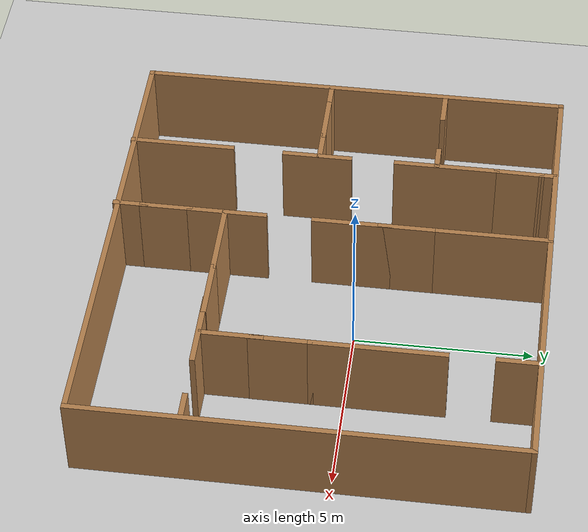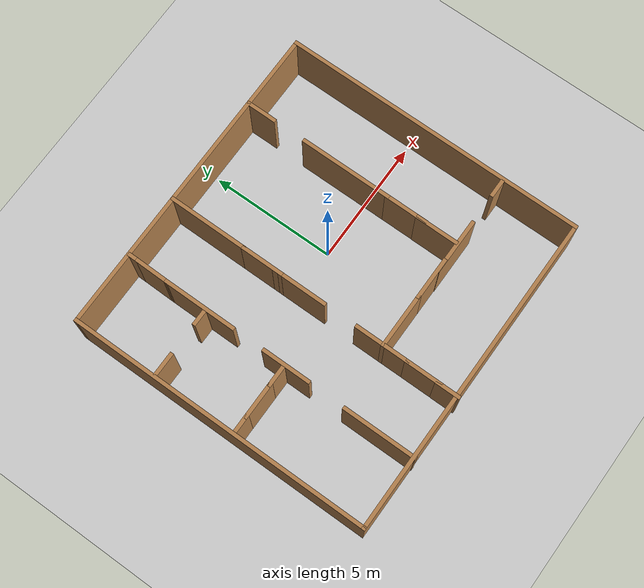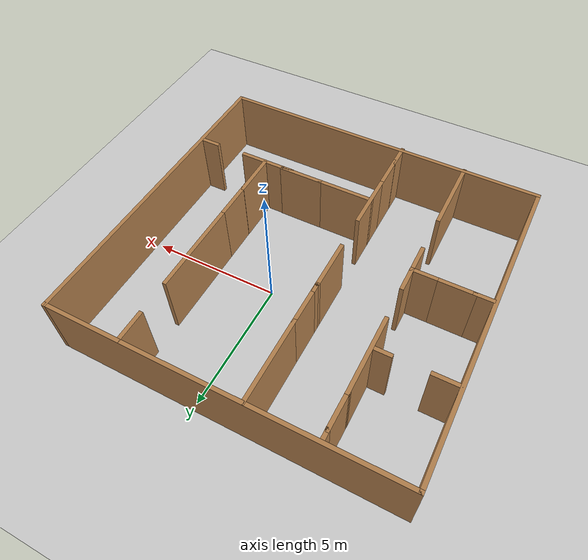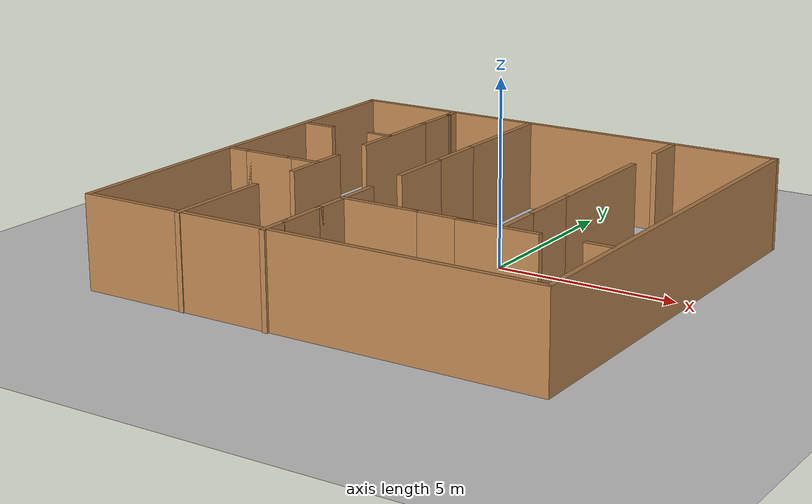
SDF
<sdf version="1.6">
 <world name="default">
  <light name="sun" type="directional">
   <pose>0 0 10 0 -0 0</pose>
   <diffuse>0.8 0.8 0.8 1</diffuse>
   <specular>0.2 0.2 0.2 1</specular>
   <attenuation>
    <range>1000</range>
    <constant>0.9</constant>
    <linear>0.01</linear>
    <quadratic>0.001</quadratic>
   </attenuation>
   <direction>-0.5 0.1 -0.9</direction>
  </light>
  <model name="ground_plane">
   <static>1</static>
   <link name="link">
    <collision name="collision">
     <geometry><plane><normal>0 0 1</normal><size>100 100</size></plane></geometry>
     <surface>
      <contact><collide_bitmask>65535</collide_bitmask></contact>
      <friction><ode><mu>100</mu><mu2>50</mu2></ode></friction>
     </surface>
    </collision>
    <visual name="visual">
     <cast_shadows>0</cast_shadows>
     <geometry><plane><normal>0 0 1</normal><size>100 100</size></plane></geometry>
     <material>
      <script><uri>file://media/materials/scripts/gazebo.material</uri><name>Gazebo/Grey</name></script>
     </material>
    </visual>
   </link>
  </model>
  <gravity>0 0 -9.8</gravity>
  <magnetic_field>6e-06 2.3e-05 -4.2e-05</magnetic_field>
  <atmosphere type="adiabatic"/>
  <physics name="default_physics" default="0" type="ode">
   <max_step_size>0.001</max_step_size>
   <real_time_factor>1</real_time_factor>
   <real_time_update_rate>1000</real_time_update_rate>
  </physics>
  <scene><ambient>0.4 0.4 0.4 1</ambient><background>0.7 0.7 0.7 1</background><shadows>1</shadows></scene>
  <audio><device>default</device></audio>
  <spherical_coordinates>
   <surface_model>EARTH_WGS84</surface_model>
   <latitude_deg>0</latitude_deg>
   <longitude_deg>0</longitude_deg>
   <elevation>0</elevation>
   <heading_deg>0</heading_deg>
  </spherical_coordinates>
  <model name="doors_sym">
   <pose>-1.1337 -0.884038 0 0 -0 0</pose>
   <link name="Wall_10">
    <collision name="Wall_10_Collision">
     <geometry><box><size>12.25 0.15 2.5</size></box></geometry>
     <pose>0 0 1.25 0 -0 0</pose>
    </collision>
    <visual name="Wall_10_Visual">
     <pose>0 0 1.25 0 -0 0</pose>
     <geometry><box><size>12.25 0.15 2.5</size></box></geometry>
     <material>
      <script><uri>file://media/materials/scripts/gazebo.material</uri><name>Gazebo/Wood</name></script>
      <ambient>1 1 1 1</ambient>
     </material>
     <meta><layer>0</layer></meta>
    </visual>
    <pose>6.425 0.033165 0 0 -0 1.5708</pose>
   </link>
   <link name="Wall_11">
    <collision name="Wall_11_Collision">
     <geometry><box><size>13 0.15 2.5</size></box></geometry>
     <pose>0 0 1.25 0 -0 0</pose>
    </collision>
    <visual name="Wall_11_Visual">
     <pose>0 0 1.25 0 -0 0</pose>
     <geometry><box><size>13 0.15 2.5</size></box></geometry>
     <material>
      <script><uri>file://media/materials/scripts/gazebo.material</uri><name>Gazebo/Wood</name></script>
      <ambient>1 1 1 1</ambient>
     </material>
     <meta><layer>0</layer></meta>
    </visual>
    <pose>0 6.08317 0 0 -0 3.14159</pose>
   </link>
   <link name="Wall_13">
    <collision name="Wall_13_Collision">
     <geometry><box><size>3 0.15 2.5</size></box></geometry>
     <pose>0 0 1.25 0 -0 0</pose>
    </collision>
    <visual name="Wall_13_Visual">
     <pose>0 0 1.25 0 -0 0</pose>
     <geometry><box><size>3 0.15 2.5</size></box></geometry>
     <material>
      <script><uri>file://media/materials/scripts/gazebo.material</uri><name>Gazebo/Wood</name></script>
      <ambient>1 1 1 1</ambient>
     </material>
     <meta><layer>0</layer></meta>
    </visual>
    <pose>-3.54148 -4.61932 0 0 -0 1.5708</pose>
   </link>
   <link name="Wall_15">
    <collision name="Wall_15_Collision">
     <geometry><box><size>2.25 0.15 2.5</size></box></geometry>
     <pose>0 0 1.25 0 -0 0</pose>
    </collision>
    <visual name="Wall_15_Visual">
     <pose>0 0 1.25 0 -0 0</pose>
     <geometry><box><size>2.25 0.15 2.5</size></box></geometry>
     <material>
      <script><uri>file://media/materials/scripts/gazebo.material</uri><name>Gazebo/Wood</name></script>
      <ambient>1 1 1 1</ambient>
     </material>
     <meta><layer>0</layer></meta>
    </visual>
    <pose>-0.979468 -2.93093 0 0 -0 1.5708</pose>
   </link>
   <link name="Wall_18">
    <collision name="Wall_18_Collision">
     <geometry><box><size>2.25 0.15 2.5</size></box></geometry>
     <pose>0 0 1.25 0 -0 0</pose>
    </collision>
    <visual name="Wall_18_Visual">
     <pose>0 0 1.25 0 -0 0</pose>
     <geometry><box><size>2.25 0.15 2.5</size></box></geometry>
     <material>
      <script><uri>file://media/materials/scripts/gazebo.material</uri><name>Gazebo/Wood</name></script>
      <ambient>1 1 1 1</ambient>
     </material>
     <meta><layer>0</layer></meta>
    </visual>
    <pose>3.38593 -3.00335 0 0 -0 0</pose>
   </link>
   <link name="Wall_20">
    <collision name="Wall_20_Collision">
     <geometry><box><size>3.75 0.15 2.5</size></box></geometry>
     <pose>0 0 1.25 0 -0 0</pose>
    </collision>
    <visual name="Wall_20_Visual">
     <pose>0 0 1.25 0 -0 0</pose>
     <geometry><box><size>3.75 0.15 2.5</size></box></geometry>
     <material>
      <script><uri>file://media/materials/scripts/gazebo.material</uri><name>Gazebo/Wood</name></script>
      <ambient>1 1 1 1</ambient>
     </material>
     <meta><layer>0</layer></meta>
    </visual>
    <pose>3.50313 1.78693 0 0 -0 1.5708</pose>
   </link>
   <link name="Wall_22">
    <collision name="Wall_22_Collision">
     <geometry><box><size>1.25 0.15 2.5</size></box></geometry>
     <pose>0 0 1.25 0 -0 0</pose>
    </collision>
    <visual name="Wall_22_Visual">
     <pose>0 0 1.25 0 -0 0</pose>
     <geometry><box><size>1.25 0.15 2.5</size></box></geometry>
     <material>
      <script><uri>file://media/materials/scripts/gazebo.material</uri><name>Gazebo/Wood</name></script>
      <ambient>1 1 1 1</ambient>
     </material>
     <meta><layer>0</layer></meta>
    </visual>
    <pose>3.49967 5.5086 0 0 -0 -1.5708</pose>
   </link>
   <link name="Wall_24">
    <collision name="Wall_24_Collision">
     <geometry><box><size>1.75 0.15 2.5</size></box></geometry>
     <pose>0 0 1.25 0 -0 0</pose>
    </collision>
    <visual name="Wall_24_Visual">
     <pose>0 0 1.25 0 -0 0</pose>
     <geometry><box><size>1.75 0.15 2.5</size></box></geometry>
     <material>
      <script><uri>file://media/materials/scripts/gazebo.material</uri><name>Gazebo/Wood</name></script>
      <ambient>1 1 1 1</ambient>
     </material>
     <meta><layer>0</layer></meta>
    </visual>
    <pose>3.4969 -2.13248 0 0 -0 -1.5708</pose>
   </link>
   <link name="Wall_26">
    <collision name="Wall_26_Collision">
     <geometry><box><size>0.75 0.15 2.5</size></box></geometry>
     <pose>0 0 1.25 0 -0 0</pose>
    </collision>
    <visual name="Wall_26_Visual">
     <pose>0 0 1.25 0 -0 0</pose>
     <geometry><box><size>0.75 0.15 2.5</size></box></geometry>
     <material>
      <script><uri>file://media/materials/scripts/gazebo.material</uri><name>Gazebo/Wood</name></script>
      <ambient>1 1 1 1</ambient>
     </material>
     <meta><layer>0</layer></meta>
    </visual>
    <pose>6.0042 -2.98943 0 0 -0 0</pose>
   </link>
   <link name="Wall_31">
    <collision name="Wall_31_Collision">
     <geometry><box><size>2.25 0.15 2.5</size></box></geometry>
     <pose>0 0 1.25 0 -0 0</pose>
    </collision>
    <visual name="Wall_31_Visual">
     <pose>0 0 1.25 0 -0 0</pose>
     <geometry><box><size>2.25 0.15 2.5</size></box></geometry>
     <material>
      <script><uri>file://media/materials/scripts/gazebo.material</uri><name>Gazebo/Wood</name></script>
      <ambient>1 1 1 1</ambient>
     </material>
     <meta><layer>0</layer></meta>
    </visual>
    <pose>0.067811 -2.9865 0 0 -0 3.14159</pose>
   </link>
   <link name="Wall_33">
    <collision name="Wall_33_Collision">
     <geometry><box><size>1 0.15 2.5</size></box></geometry>
     <pose>0 0 1.25 0 -0 0</pose>
    </collision>
    <visual name="Wall_33_Visual">
     <pose>0 0 1.25 0 -0 0</pose>
     <geometry><box><size>1 0.15 2.5</size></box></geometry>
     <material>
      <script><uri>file://media/materials/scripts/gazebo.material</uri><name>Gazebo/Wood</name></script>
      <ambient>1 1 1 1</ambient>
     </material>
     <meta><layer>0</layer></meta>
    </visual>
    <pose>-0.983835 -5.65817 0 0 -0 -1.5708</pose>
   </link>
   <link name="Wall_35">
    <collision name="Wall_35_Collision">
     <geometry><box><size>2.25 0.15 2.5</size></box></geometry>
     <pose>0 0 1.25 0 -0 0</pose>
    </collision>
    <visual name="Wall_35_Visual">
     <pose>0 0 1.25 0 -0 0</pose>
     <geometry><box><size>2.25 0.15 2.5</size></box></geometry>
     <material>
      <script><uri>file://media/materials/scripts/gazebo.material</uri><name>Gazebo/Wood</name></script>
      <ambient>1 1 1 1</ambient>
     </material>
     <meta><layer>0</layer></meta>
    </visual>
    <pose>-0.980432 0.567196 0 0 -0 1.5708</pose>
   </link>
   <link name="Wall_37">
    <collision name="Wall_37_Collision">
     <geometry><box><size>3.25 0.15 2.5</size></box></geometry>
     <pose>0 0 1.25 0 -0 0</pose>
    </collision>
    <visual name="Wall_37_Visual">
     <pose>0 0 1.25 0 -0 0</pose>
     <geometry><box><size>3.25 0.15 2.5</size></box></geometry>
     <material>
      <script><uri>file://media/materials/scripts/gazebo.material</uri><name>Gazebo/Wood</name></script>
      <ambient>1 1 1 1</ambient>
     </material>
     <meta><layer>0</layer></meta>
    </visual>
    <pose>-0.980432 4.5172 0 0 -0 1.5708</pose>
   </link>
   <link name="Wall_39">
    <collision name="Wall_39_Collision">
     <geometry><box><size>2 0.15 2.5</size></box></geometry>
     <pose>0 0 1.25 0 -0 0</pose>
    </collision>
    <visual name="Wall_39_Visual">
     <pose>0 0 1.25 0 -0 0</pose>
     <geometry><box><size>2 0.15 2.5</size></box></geometry>
     <material>
      <script><uri>file://media/materials/scripts/gazebo.material</uri><name>Gazebo/Wood</name></script>
      <ambient>1 1 1 1</ambient>
     </material>
     <meta><layer>0</layer></meta>
    </visual>
    <pose>-3.51465 -0.717031 0 0 -0 1.5708</pose>
   </link>
   <link name="Wall_41">
    <collision name="Wall_41_Collision">
     <geometry><box><size>3 0.15 2.5</size></box></geometry>
     <pose>0 0 1.25 0 -0 0</pose>
    </collision>
    <visual name="Wall_41_Visual">
     <pose>0 0 1.25 0 -0 0</pose>
     <geometry><box><size>3 0.15 2.5</size></box></geometry>
     <material>
      <script><uri>file://media/materials/scripts/gazebo.material</uri><name>Gazebo/Wood</name></script>
      <ambient>1 1 1 1</ambient>
     </material>
     <meta><layer>0</layer></meta>
    </visual>
    <pose>-3.51465 2.98297 0 0 -0 1.5708</pose>
   </link>
   <link name="Wall_43">
    <collision name="Wall_43_Collision">
     <geometry><box><size>0.5 0.15 2.5</size></box></geometry>
     <pose>0 0 1.25 0 -0 0</pose>
    </collision>
    <visual name="Wall_43_Visual">
     <pose>0 0 1.25 0 -0 0</pose>
     <geometry><box><size>0.5 0.15 2.5</size></box></geometry>
     <material>
      <script><uri>file://media/materials/scripts/gazebo.material</uri><name>Gazebo/Wood</name></script>
      <ambient>1 1 1 1</ambient>
     </material>
     <meta><layer>0</layer></meta>
    </visual>
    <pose>-3.49869 5.8632 0 0 -0 1.5708</pose>
   </link>
   <link name="Wall_45">
    <collision name="Wall_45_Collision">
     <geometry><box><size>0.75 0.15 2.5</size></box></geometry>
     <pose>0 0 1.25 0 -0 0</pose>
    </collision>
    <visual name="Wall_45_Visual">
     <pose>0 0 1.25 0 -0 0</pose>
     <geometry><box><size>0.75 0.15 2.5</size></box></geometry>
     <material>
      <script><uri>file://media/materials/scripts/gazebo.material</uri><name>Gazebo/Wood</name></script>
      <ambient>1 1 1 1</ambient>
     </material>
     <meta><layer>0</layer></meta>
    </visual>
    <pose>-3.84499 2.70629 0 0 -0 3.14159</pose>
   </link>
   <link name="Wall_47">
    <collision name="Wall_47_Collision">
     <geometry><box><size>1 0.15 2.5</size></box></geometry>
     <pose>0 0 1.25 0 -0 0</pose>
    </collision>
    <visual name="Wall_47_Visual">
     <pose>0 0 1.25 0 -0 0</pose>
     <geometry><box><size>1 0.15 2.5</size></box></geometry>
     <material>
      <script><uri>file://media/materials/scripts/gazebo.material</uri><name>Gazebo/Wood</name></script>
      <ambient>1 1 1 1</ambient>
     </material>
     <meta><layer>0</layer></meta>
    </visual>
    <pose>-5.91999 2.70629 0 0 -0 3.14159</pose>
   </link>
   <link name="Wall_49">
    <collision name="Wall_49_Collision">
     <geometry><box><size>1 0.15 2.5</size></box></geometry>
     <pose>0 0 1.25 0 -0 0</pose>
    </collision>
    <visual name="Wall_49_Visual">
     <pose>0 0 1.25 0 -0 0</pose>
     <geometry><box><size>1 0.15 2.5</size></box></geometry>
     <material>
      <script><uri>file://media/materials/scripts/gazebo.material</uri><name>Gazebo/Wood</name></script>
      <ambient>1 1 1 1</ambient>
     </material>
     <meta><layer>0</layer></meta>
    </visual>
    <pose>-3.94153 -0.652407 0 0 -0 3.14159</pose>
   </link>
   <link name="Wall_51">
    <collision name="Wall_51_Collision">
     <geometry><box><size>0.75 0.15 2.5</size></box></geometry>
     <pose>0 0 1.25 0 -0 0</pose>
    </collision>
    <visual name="Wall_51_Visual">
     <pose>0 0 1.25 0 -0 0</pose>
     <geometry><box><size>0.75 0.15 2.5</size></box></geometry>
     <material>
      <script><uri>file://media/materials/scripts/gazebo.material</uri><name>Gazebo/Wood</name></script>
      <ambient>1 1 1 1</ambient>
     </material>
     <meta><layer>0</layer></meta>
    </visual>
    <pose>-6.01653 -0.652407 0 0 -0 3.14159</pose>
   </link>
   <link name="Wall_61">
    <collision name="Wall_61_Collision">
     <geometry><box><size>1.75 0.15 2.5</size></box></geometry>
     <pose>0 0 1.25 0 -0 0</pose>
    </collision>
    <visual name="Wall_61_Visual">
     <pose>0 0 1.25 0 -0 0</pose>
     <geometry><box><size>1.75 0.15 2.5</size></box></geometry>
     <material>
      <script><uri>file://media/materials/scripts/gazebo.material</uri><name>Gazebo/Wood</name></script>
      <ambient>1 1 1 1</ambient>
     </material>
     <meta><layer>0</layer></meta>
    </visual>
    <pose>3.50313 -0.81307 0 0 -0 -1.5708</pose>
   </link>
   <link name="Wall_63">
    <collision name="Wall_63_Collision">
     <geometry><box><size>1.75 0.15 2.5</size></box></geometry>
     <pose>0 0 1.25 0 -0 0</pose>
    </collision>
    <visual name="Wall_63_Visual">
     <pose>0 0 1.25 0 -0 0</pose>
     <geometry><box><size>1.75 0.15 2.5</size></box></geometry>
     <material>
      <script><uri>file://media/materials/scripts/gazebo.material</uri><name>Gazebo/Wood</name></script>
      <ambient>1 1 1 1</ambient>
     </material>
     <meta><layer>0</layer></meta>
    </visual>
    <pose>1.91781 -2.9865 0 0 -0 0</pose>
   </link>
   <link name="Wall_65">
    <collision name="Wall_65_Collision">
     <geometry><box><size>1.5 0.15 2.5</size></box></geometry>
     <pose>0 0 1.25 0 -0 0</pose>
    </collision>
    <visual name="Wall_65_Visual">
     <pose>0 0 1.25 0 -0 0</pose>
     <geometry><box><size>1.5 0.15 2.5</size></box></geometry>
     <material>
      <script><uri>file://media/materials/scripts/gazebo.material</uri><name>Gazebo/Wood</name></script>
      <ambient>1 1 1 1</ambient>
     </material>
     <meta><layer>0</layer></meta>
    </visual>
    <pose>-0.979468 -4.65593 0 0 -0 -1.5708</pose>
   </link>
   <link name="Wall_67">
    <collision name="Wall_67_Collision">
     <geometry><box><size>1.75 0.15 2.5</size></box></geometry>
     <pose>0 0 1.25 0 -0 0</pose>
    </collision>
    <visual name="Wall_67_Visual">
     <pose>0 0 1.25 0 -0 0</pose>
     <geometry><box><size>1.75 0.15 2.5</size></box></geometry>
     <material>
      <script><uri>file://media/materials/scripts/gazebo.material</uri><name>Gazebo/Wood</name></script>
      <ambient>1 1 1 1</ambient>
     </material>
     <meta><layer>0</layer></meta>
    </visual>
    <pose>-0.980432 2.1672 0 0 -0 -1.5708</pose>
   </link>
   <link name="Wall_71">
    <collision name="Wall_71_Collision">
     <geometry><box><size>1.43033 0.15 2.5</size></box></geometry>
     <pose>0 0 1.25 0 -0 0</pose>
    </collision>
    <visual name="Wall_71_Visual">
     <pose>0 0 1.25 0 -0 0</pose>
     <geometry><box><size>1.43033 0.15 2.5</size></box></geometry>
     <material>
      <script><uri>file://media/materials/scripts/gazebo.material</uri><name>Gazebo/Wood</name></script>
      <ambient>1 1 1 1</ambient>
     </material>
     <meta><layer>0</layer></meta>
    </visual>
    <pose>-3.50667 5.04809 0 0 -0 -1.58326</pose>
   </link>
   <link name="Wall_73">
    <collision name="Wall_73_Collision">
     <geometry><box><size>1.5 0.15 2.5</size></box></geometry>
     <pose>0 0 1.25 0 -0 0</pose>
    </collision>
    <visual name="Wall_73_Visual">
     <pose>0 0 1.25 0 -0 0</pose>
     <geometry><box><size>1.5 0.15 2.5</size></box></geometry>
     <material>
      <script><uri>file://media/materials/scripts/gazebo.material</uri><name>Gazebo/Wood</name></script>
      <ambient>1 1 1 1</ambient>
     </material>
     <meta><layer>0</layer></meta>
    </visual>
    <pose>-5.04153 -0.652407 0 0 -0 0</pose>
   </link>
   <link name="Wall_8">
    <collision name="Wall_8_Collision">
     <geometry><box><size>12.25 0.15 2.5</size></box></geometry>
     <pose>0 0 1.25 0 -0 0</pose>
    </collision>
    <visual name="Wall_8_Visual">
     <pose>0 0 1.25 0 -0 0</pose>
     <geometry><box><size>12.25 0.15 2.5</size></box></geometry>
     <material>
      <script><uri>file://media/materials/scripts/gazebo.material</uri><name>Gazebo/Wood</name></script>
      <ambient>1 1 1 1</ambient>
     </material>
     <meta><layer>0</layer></meta>
    </visual>
    <pose>-6.425 0.033165 0 0 -0 -1.5708</pose>
   </link>
   <link name="Wall_9">
    <collision name="Wall_9_Collision">
     <geometry><box><size>13 0.15 2.5</size></box></geometry>
     <pose>0 0 1.25 0 -0 0</pose>
    </collision>
    <visual name="Wall_9_Visual">
     <pose>0 0 1.25 0 -0 0</pose>
     <geometry><box><size>13 0.15 2.5</size></box></geometry>
     <material>
      <script><uri>file://media/materials/scripts/gazebo.material</uri><name>Gazebo/Wood</name></script>
      <ambient>1 1 1 1</ambient>
     </material>
     <meta><layer>0</layer></meta>
    </visual>
    <pose>0 -6.01684 0 0 -0 0</pose>
   </link>
   <static>1</static>
  </model>
 </world>
</sdf>
